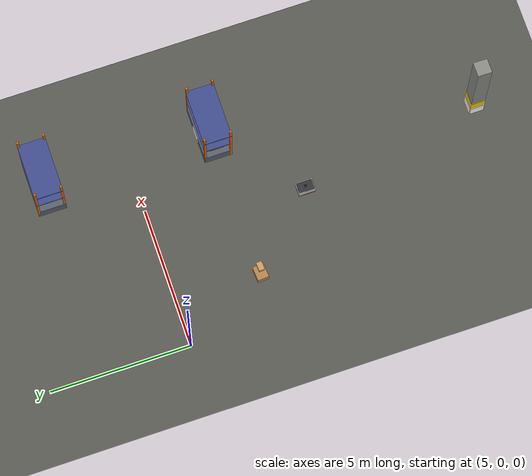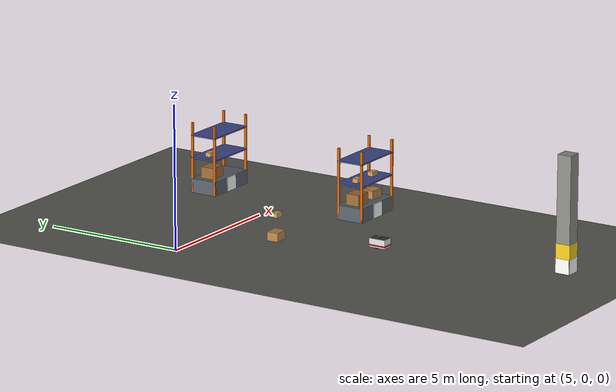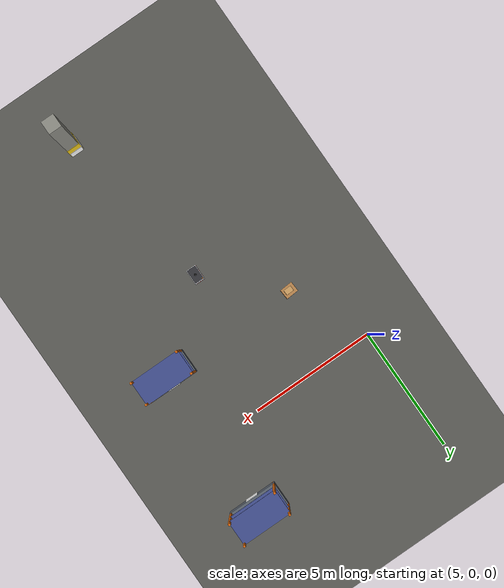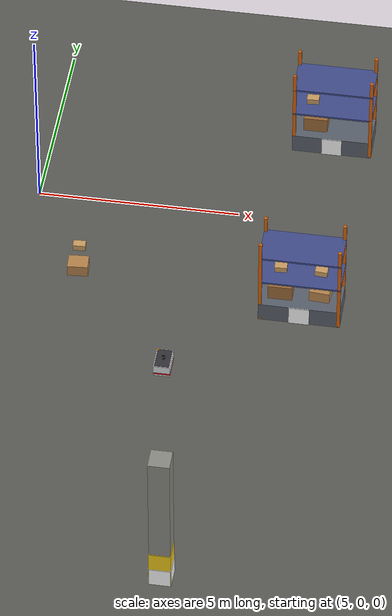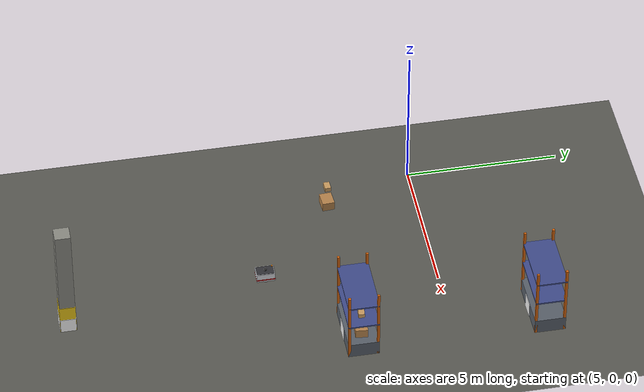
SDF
<sdf version="1.8">
 <world name="warehouse">
  <model name="ground_plane">
   <static>true</static>
   <link name="link">
    <collision name="collision">
     <geometry><plane><normal>0 0 1</normal><size>64 44</size></plane></geometry>
     <surface><friction><ode><mu>0.8</mu><mu2>0.8</mu2></ode></friction></surface>
    </collision>
    <visual name="visual">
     <geometry><plane><normal>0 0 1</normal><size>64 44</size></plane></geometry>
     <material>
      <ambient>0.35 0.35 0.33 1</ambient>
      <diffuse>0.35 0.35 0.33 1</diffuse>
      <specular>0.05 0.05 0.05 1</specular>
     </material>
    </visual>
   </link>
  </model>
  <include>
   <uri>model://pillar</uri>
   <name>pillar_4</name>
   <pose>10.0000 -12.0000 0.0000 0.0000 0.0000 0.0000</pose>
  </include>
  <model name="pillar_4_marker_0">
   <static>true</static>
   <pose>10.2620 -12.0000 0.0000 0.0000 0.0000 0.0000</pose>
   <link name="link">
    <collision name="plate_collision">
     <pose>0 0 0.250 0 0 0</pose>
     <geometry><box><size>0.02 0.50 0.50</size></box></geometry>
    </collision>
    <visual name="plate">
     <pose>0 0 0.250 0 0 0</pose>
     <geometry><box><size>0.02 0.50 0.50</size></box></geometry>
     <material>
      <ambient>1 1 1 1</ambient>
      <diffuse>1 1 1 1</diffuse>
      <specular>0.05 0.05 0.05 1</specular>
      <pbr>
       <metal>
        <albedo_map>model://dock_marker/materials/textures/aruco_4x4_100_22.png</albedo_map>
        <metalness>0.0</metalness>
        <roughness>0.9</roughness>
       </metal>
      </pbr>
     </material>
    </visual>
   </link>
  </model>
  <model name="pillar_4_marker_1">
   <static>true</static>
   <pose>9.7380 -12.0000 0.0000 0.0000 0.0000 3.1416</pose>
   <link name="link">
    <collision name="plate_collision">
     <pose>0 0 0.250 0 0 0</pose>
     <geometry><box><size>0.02 0.50 0.50</size></box></geometry>
    </collision>
    <visual name="plate">
     <pose>0 0 0.250 0 0 0</pose>
     <geometry><box><size>0.02 0.50 0.50</size></box></geometry>
     <material>
      <ambient>1 1 1 1</ambient>
      <diffuse>1 1 1 1</diffuse>
      <specular>0.05 0.05 0.05 1</specular>
      <pbr>
       <metal>
        <albedo_map>model://dock_marker/materials/textures/aruco_4x4_100_23.png</albedo_map>
        <metalness>0.0</metalness>
        <roughness>0.9</roughness>
       </metal>
      </pbr>
     </material>
    </visual>
   </link>
  </model>
  <model name="pillar_4_marker_2">
   <static>true</static>
   <pose>10.0000 -11.7380 0.0000 0.0000 0.0000 1.5708</pose>
   <link name="link">
    <collision name="plate_collision">
     <pose>0 0 0.250 0 0 0</pose>
     <geometry><box><size>0.02 0.50 0.50</size></box></geometry>
    </collision>
    <visual name="plate">
     <pose>0 0 0.250 0 0 0</pose>
     <geometry><box><size>0.02 0.50 0.50</size></box></geometry>
     <material>
      <ambient>1 1 1 1</ambient>
      <diffuse>1 1 1 1</diffuse>
      <specular>0.05 0.05 0.05 1</specular>
      <pbr>
       <metal>
        <albedo_map>model://dock_marker/materials/textures/aruco_4x4_100_24.png</albedo_map>
        <metalness>0.0</metalness>
        <roughness>0.9</roughness>
       </metal>
      </pbr>
     </material>
    </visual>
   </link>
  </model>
  <model name="pillar_4_marker_3">
   <static>true</static>
   <pose>10.0000 -12.2620 0.0000 0.0000 0.0000 -1.5708</pose>
   <link name="link">
    <collision name="plate_collision">
     <pose>0 0 0.250 0 0 0</pose>
     <geometry><box><size>0.02 0.50 0.50</size></box></geometry>
    </collision>
    <visual name="plate">
     <pose>0 0 0.250 0 0 0</pose>
     <geometry><box><size>0.02 0.50 0.50</size></box></geometry>
     <material>
      <ambient>1 1 1 1</ambient>
      <diffuse>1 1 1 1</diffuse>
      <specular>0.05 0.05 0.05 1</specular>
      <pbr>
       <metal>
        <albedo_map>model://dock_marker/materials/textures/aruco_4x4_100_25.png</albedo_map>
        <metalness>0.0</metalness>
        <roughness>0.9</roughness>
       </metal>
      </pbr>
     </material>
    </visual>
   </link>
  </model>
  <model name="rack_marker_67">
   <static>true</static>
   <pose>12.0000 2.4880 0.0000 0.0000 0.0000 -1.5708</pose>
   <link name="link">
    <collision name="plate_collision">
     <pose>0 0 0.250 0 0 0</pose>
     <geometry><box><size>0.02 0.50 0.50</size></box></geometry>
    </collision>
    <visual name="plate">
     <pose>0 0 0.250 0 0 0</pose>
     <geometry><box><size>0.02 0.50 0.50</size></box></geometry>
     <material>
      <ambient>1 1 1 1</ambient>
      <diffuse>1 1 1 1</diffuse>
      <specular>0.05 0.05 0.05 1</specular>
      <pbr>
       <metal>
        <albedo_map>model://dock_marker/materials/textures/aruco_4x4_100_67.png</albedo_map>
        <metalness>0.0</metalness>
        <roughness>0.9</roughness>
       </metal>
      </pbr>
     </material>
    </visual>
   </link>
  </model>
  <model name="rack_marker_80">
   <static>true</static>
   <pose>12.0000 -2.4880 0.0000 0.0000 0.0000 1.5708</pose>
   <link name="link">
    <collision name="plate_collision">
     <pose>0 0 0.250 0 0 0</pose>
     <geometry><box><size>0.02 0.50 0.50</size></box></geometry>
    </collision>
    <visual name="plate">
     <pose>0 0 0.250 0 0 0</pose>
     <geometry><box><size>0.02 0.50 0.50</size></box></geometry>
     <material>
      <ambient>1 1 1 1</ambient>
      <diffuse>1 1 1 1</diffuse>
      <specular>0.05 0.05 0.05 1</specular>
      <pbr>
       <metal>
        <albedo_map>model://dock_marker/materials/textures/aruco_4x4_100_80.png</albedo_map>
        <metalness>0.0</metalness>
        <roughness>0.9</roughness>
       </metal>
      </pbr>
     </material>
    </visual>
   </link>
  </model>
  <model name="rack_marker_81">
   <static>true</static>
   <pose>12.0000 -3.5120 0.0000 0.0000 0.0000 -1.5708</pose>
   <link name="link">
    <collision name="plate_collision">
     <pose>0 0 0.250 0 0 0</pose>
     <geometry><box><size>0.02 0.50 0.50</size></box></geometry>
    </collision>
    <visual name="plate">
     <pose>0 0 0.250 0 0 0</pose>
     <geometry><box><size>0.02 0.50 0.50</size></box></geometry>
     <material>
      <ambient>1 1 1 1</ambient>
      <diffuse>1 1 1 1</diffuse>
      <specular>0.05 0.05 0.05 1</specular>
      <pbr>
       <metal>
        <albedo_map>model://dock_marker/materials/textures/aruco_4x4_100_81.png</albedo_map>
        <metalness>0.0</metalness>
        <roughness>0.9</roughness>
       </metal>
      </pbr>
     </material>
    </visual>
   </link>
  </model>
  <include>
   <uri>model://rack</uri>
   <name>rack_B6</name>
   <pose>12.0000 3.0000 0.0000 0.0000 0.0000 0.0000</pose>
  </include>
  <include>
   <uri>model://rack</uri>
   <name>rack_C6</name>
   <pose>12.0000 -3.0000 0.0000 0.0000 0.0000 0.0000</pose>
  </include>
  <include>
   <uri>model://box_large</uri>
   <name>rack_B6_box_large_0</name>
   <pose>11.5496 3.0000 0.5000 0.0000 0.0000 0.0087</pose>
   <static>true</static>
  </include>
  <include>
   <uri>model://box_small</uri>
   <name>rack_B6_box_small_2</name>
   <pose>11.4511 3.0000 1.2750 0.0000 0.0000 0.0662</pose>
   <static>true</static>
  </include>
  <include>
   <uri>model://box_medium</uri>
   <name>rack_C5_box_medium_1</name>
   <pose>6.5039 -3.0000 0.5000 0.0000 0.0000 0.0690</pose>
   <static>true</static>
  </include>
  <include>
   <uri>model://box_small</uri>
   <name>rack_C5_box_small_3</name>
   <pose>6.5495 -3.0000 1.2750 0.0000 0.0000 0.0450</pose>
   <static>true</static>
  </include>
  <include>
   <uri>model://box_large</uri>
   <name>rack_C6_box_large_0</name>
   <pose>11.4938 -3.0000 0.5000 0.0000 0.0000 0.0053</pose>
   <static>true</static>
  </include>
  <include>
   <uri>model://box_medium</uri>
   <name>rack_C6_box_medium_1</name>
   <pose>12.4621 -3.0000 0.5000 0.0000 0.0000 -0.0826</pose>
   <static>true</static>
  </include>
  <include>
   <uri>model://box_small</uri>
   <name>rack_C6_box_small_2</name>
   <pose>11.4838 -3.0000 1.2750 0.0000 0.0000 0.0265</pose>
   <static>true</static>
  </include>
  <include>
   <uri>model://box_small</uri>
   <name>rack_C6_box_small_3</name>
   <pose>12.4730 -3.0000 1.2750 0.0000 0.0000 -0.0839</pose>
   <static>true</static>
  </include>
  <include>
   <uri>model://shuttle_amr</uri>
   <name>shuttle_amr</name>
   <pose>9.0000 -5.4750 0.0000 0.0000 0.0000 1.5708</pose>
   <plugin filename="ignition-gazebo-diff-drive-system" name="ignition::gazebo::systems::DiffDrive">
    <left_joint>wheel_left_joint</left_joint>
    <right_joint>wheel_right_joint</right_joint>
    <wheel_separation>0.36</wheel_separation>
    <wheel_radius>0.0825</wheel_radius>
    <topic>/model/shuttle_amr/cmd_vel</topic>
    <odom_topic>/model/shuttle_amr/diff_drive/odom</odom_topic>
    <tf_topic>/model/shuttle_amr/diff_drive/tf</tf_topic>
    <max_linear_velocity>1.0</max_linear_velocity>
    <min_linear_velocity>-1.0</min_linear_velocity>
    <max_linear_acceleration>0.8</max_linear_acceleration>
    <min_linear_acceleration>-0.8</min_linear_acceleration>
   </plugin>
   <plugin filename="ignition-gazebo-pose-publisher-system" name="ignition::gazebo::systems::PosePublisher">
    <publish_model_pose>true</publish_model_pose>
    <publish_nested_model_pose>true</publish_nested_model_pose>
    <publish_link_pose>false</publish_link_pose>
    <publish_collision_pose>false</publish_collision_pose>
    <publish_visual_pose>false</publish_visual_pose>
    <publish_sensor_pose>false</publish_sensor_pose>
    <use_pose_vector_msg>false</use_pose_vector_msg>
    <static_publisher>false</static_publisher>
    <update_frequency>50</update_frequency>
   </plugin>
   <plugin filename="ignition-gazebo-odometry-publisher-system" name="ignition::gazebo::systems::OdometryPublisher">
    <odom_frame>world</odom_frame>
    <robot_base_frame>shuttle_amr</robot_base_frame>
    <odom_topic>/model/shuttle_amr/odometry</odom_topic>
    <tf_topic>/model/shuttle_amr/odometry/tf</tf_topic>
    <odom_publish_frequency>50</odom_publish_frequency>
    <dimensions>2</dimensions>
   </plugin>
   <plugin filename="ignition-gazebo-triggered-publisher-system" name="ignition::gazebo::systems::TriggeredPublisher">
    <input type="ignition.msgs.Pose" topic="/model/shuttle_amr/pose">
     <match field="position.y" tol="0.25">10.625</match>
    </input>
    <output type="ignition.msgs.Twist" topic="/model/shuttle_amr/cmd_vel">linear: {x: -1.0}</output>
   </plugin>
   <plugin filename="ignition-gazebo-triggered-publisher-system" name="ignition::gazebo::systems::TriggeredPublisher">
    <input type="ignition.msgs.Pose" topic="/model/shuttle_amr/pose">
     <match field="position.y" tol="0.25">-5.625</match>
    </input>
    <output type="ignition.msgs.Twist" topic="/model/shuttle_amr/cmd_vel">linear: {x: 1.0}</output>
   </plugin>
  </include>
 </world>
</sdf>
